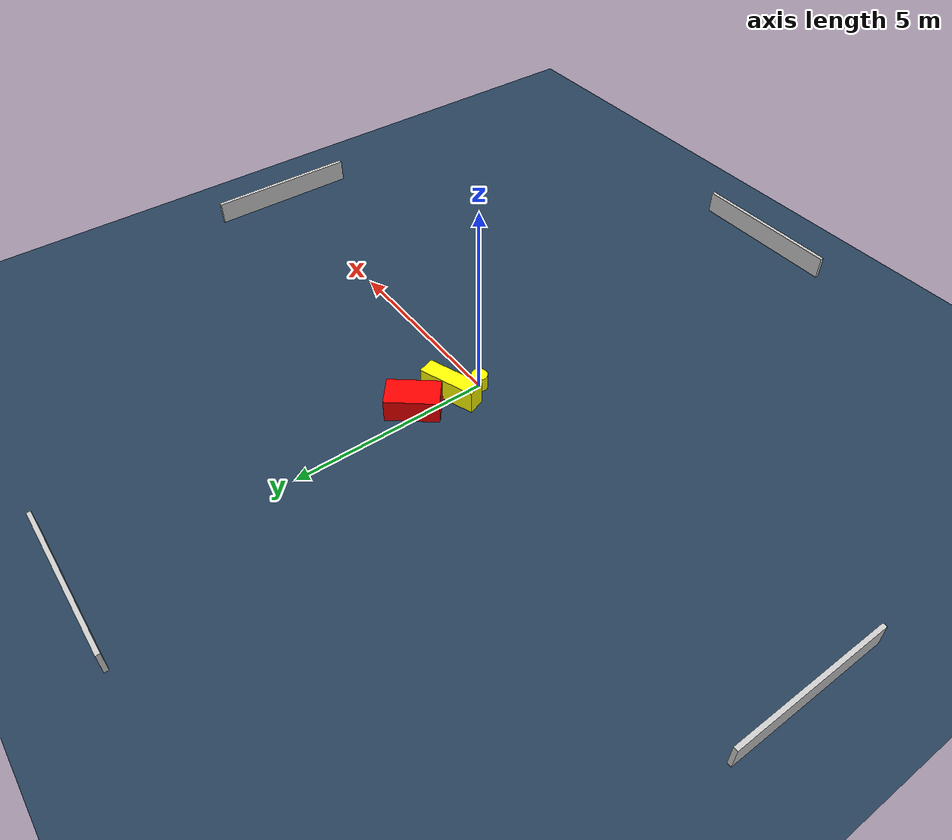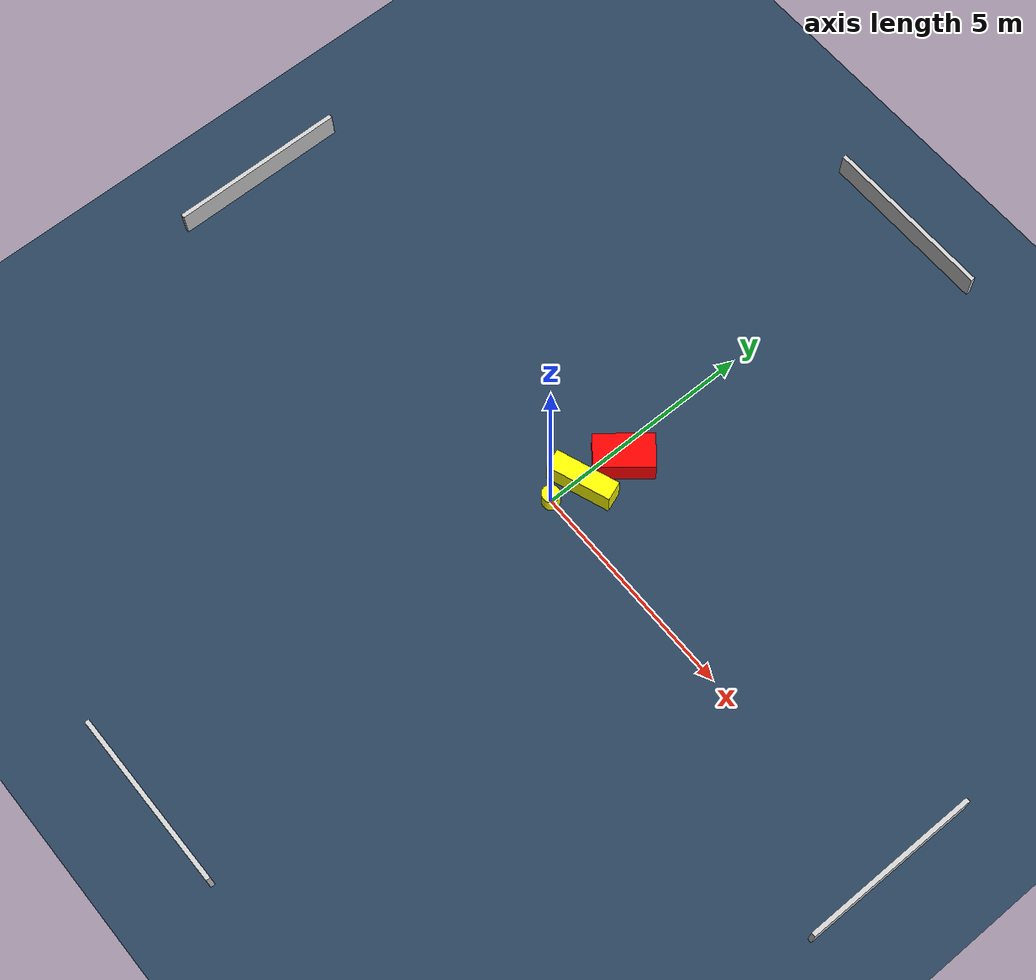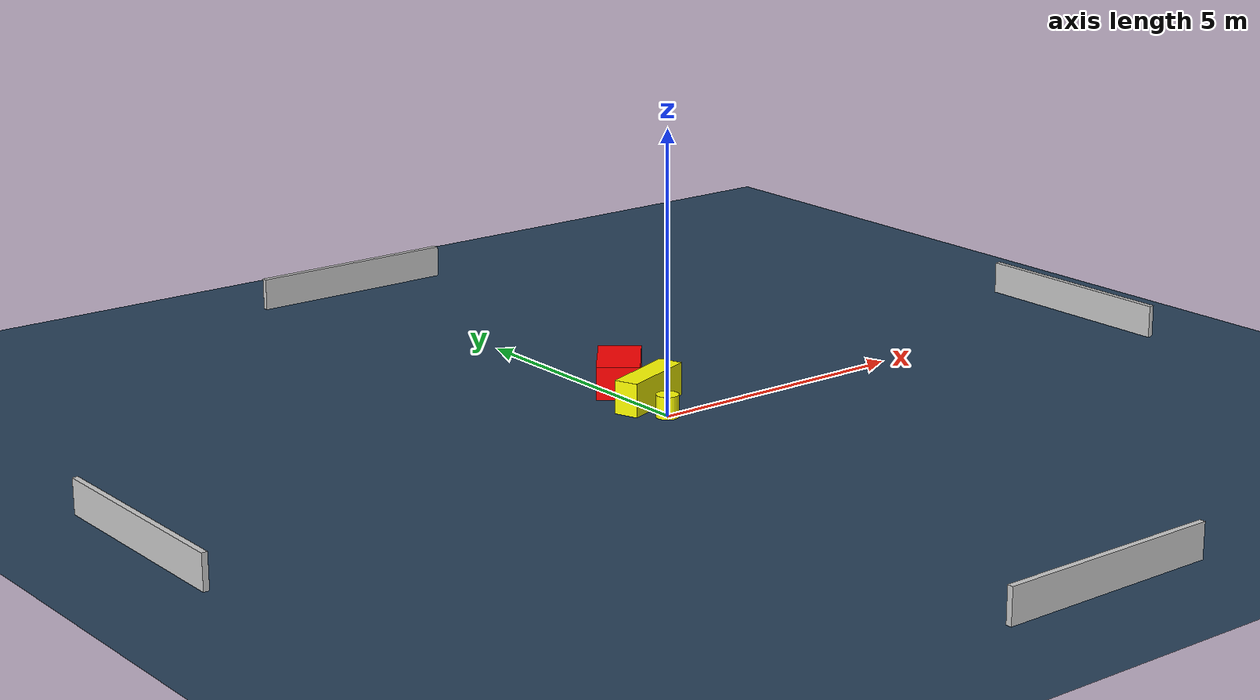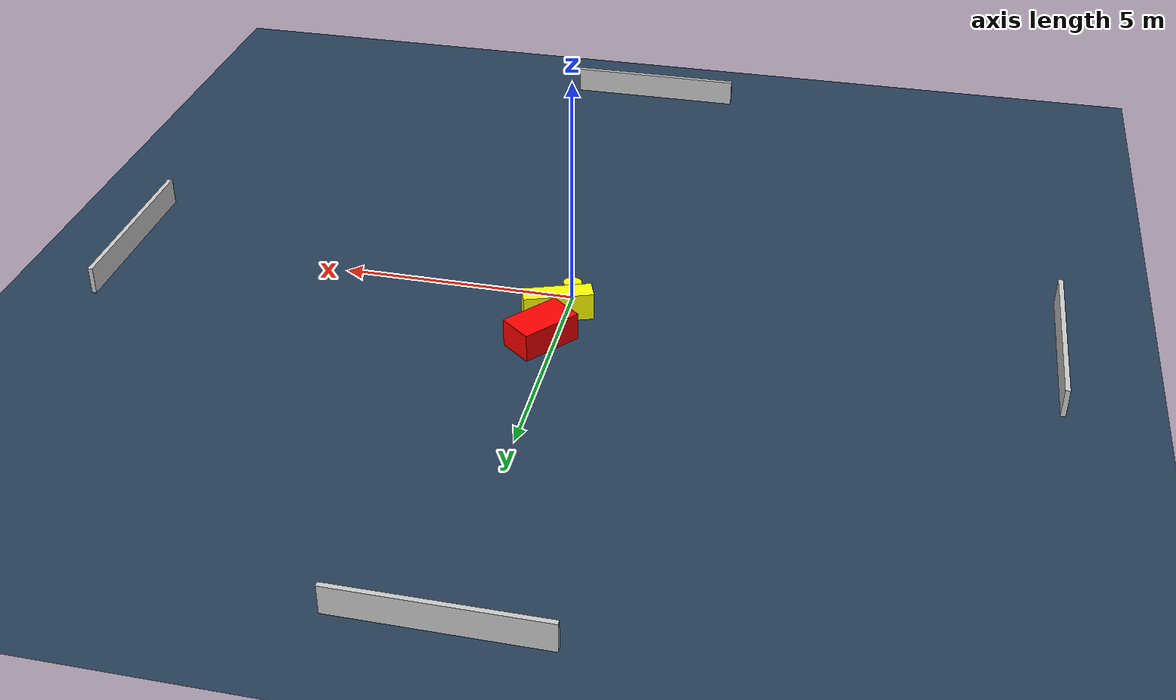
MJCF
<?xml version="1.0" ?>
<mujoco model="generated_environment">
  <option timestep="0.01" integrator="RK4" cone="elliptic"/>
  <default>
    <geom density="1"/>
  </default>
  <asset>
    <texture builtin="gradient" height="3072" name="skybox" rgb1="0.3 0.5 0.7" rgb2="0 0 0" type="skybox" width="512"/>
    <texture builtin="checker" height="300" name="groundplane" rgb1="0.2 0.3 0.4" rgb2="0.1 0.2 0.3" type="2d" width="300"/>
    <material name="groundplane" reflectance="0.2" texrepeat="5 5" texture="groundplane"/>
  </asset>
  <worldbody>
    <light dir="0 0 -1" directional="true" pos="0 0 1.5"/>
    <geom condim="3" friction="0.5 0.005 0.001" material="groundplane" name="floor" pos="0 0 0" size="0 0 0.05" type="plane"/>
    <body name="walls">
      <geom name="wall_1" condim="4" pos="-10.0 0.0 0.3" rgba="0.800000011920929 0.800000011920929 0.800000011920929 1.0" size="0.05 2.0 0.3" type="box"/>
      <geom name="wall_2" condim="4" pos="10.0 0.0 0.3" rgba="0.800000011920929 0.800000011920929 0.800000011920929 1.0" size="0.05 2.0 0.3" type="box"/>
      <geom name="wall_3" condim="4" pos="0.0 -10.0 0.3" rgba="0.800000011920929 0.800000011920929 0.800000011920929 1.0" size="2.0 0.05 0.3" type="box"/>
      <geom name="wall_4" condim="4" pos="0.0 10.0 0.3" rgba="0.800000011920929 0.800000011920929 0.800000011920929 1.0" size="2.0 0.05 0.3" type="box"/>
    </body>
    <body name="robot">
      <joint name="joint_x" type="slide" pos="0 0 0" axis="1 0 0"/>
      <joint name="joint_y" type="slide" pos="0 0 0" axis="0 1 0"/>
      <geom name="robot" type="cylinder" pos="0.0 0.0 0.2" size="0.2 0.2 0.0" mass="5.0" friction="1.0 0.005 0.0001" condim="4" rgba="1.0 1.0 0.0 1.0"/>
    </body>
    <body name="obstacle_1_movable">
      <geom name="obstacle_1_movable" condim="4" pos="0.1592392304393303 0.7194439731773589 0.3" euler="0 0 20.072808826316326" friction="0.0 0.005 0.001" rgba="1.0 1.0 0.0 1.0" size="0.7323415783945297 0.21925929714114137 0.3" type="box" mass="0.1"/>
      <joint type="free"/>
    </body>
    <body name="obstacle_2_static">
      <geom name="obstacle_2_static" condim="4" pos="0.28233315201320824 1.715511399702003 0.3" euler="0 0 320.9573982255746" friction="0.0 0.005 0.001" rgba="1.0 0.0 0.0 1.0" size="0.384415203627988 0.6551122816175015 0.3" type="box"/>
    </body>
  </worldbody>
  <actuator>
    <motor name="actuator_x" joint="joint_x" gear="1" ctrlrange="-1 1"/>
    <motor name="actuator_y" joint="joint_y" gear="1" ctrlrange="-1 1"/>
  </actuator>
</mujoco>
